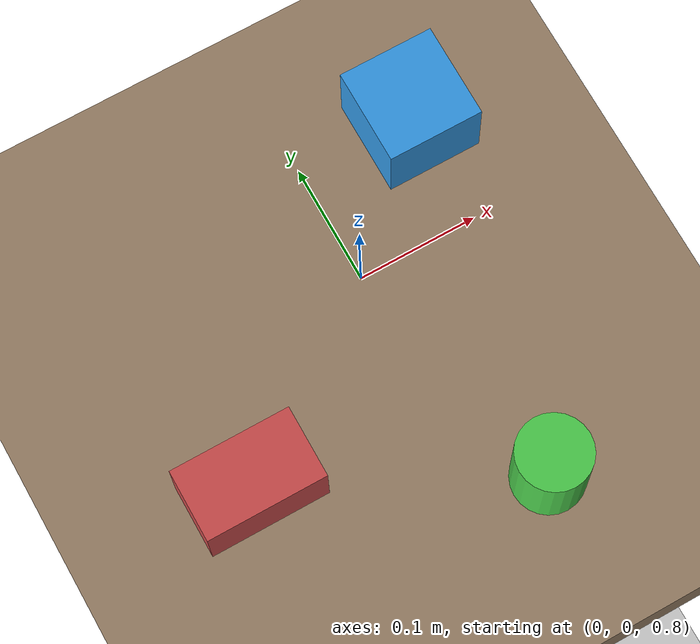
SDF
<?xml version="1.0" ?>
<!-- URL: /home/laboratorio/TFM/agarre_ros2_ws/src/agarre_gazebo/worlds/mesa_agarre_rgbd.sdf -->
<!-- Summary: Gazebo world for table grasping with RGB-D camera. -->
<sdf version="1.7">
  <world name="mesa_agarre_rgbd">

    <gravity>0 0 -9.81</gravity>

    <include>
      <uri>model://sun</uri>
    </include>

    <include>
      <uri>model://ground_plane</uri>
    </include>

    <!-- Mesa -->
    <model name="mesa">
      <static>true</static>
      <pose>0 0 0.75 0 0 0</pose>
      <link name="mesa_link">
        <collision name="mesa_collision">
          <geometry>
            <box>
              <size>1.2 0.8 0.05</size>
            </box>
          </geometry>
        </collision>
        <visual name="mesa_visual">
          <geometry>
            <box>
              <size>1.2 0.8 0.05</size>
            </box>
          </geometry>
          <material>
            <diffuse>0.6 0.5 0.4 1</diffuse>
          </material>
        </visual>
      </link>
    </model>

    <!-- Objetos sobre la mesa -->
    <model name="obj_box_1">
      <static>false</static>
      <pose>0.10 0.10 0.80 0 0 0</pose>
      <link name="link">
        <inertial><mass>0.2</mass></inertial>
        <collision name="collision">
          <geometry>
            <box><size>0.08 0.08 0.08</size></box>
          </geometry>
        </collision>
        <visual name="visual">
          <geometry>
            <box><size>0.08 0.08 0.08</size></box>
          </geometry>
          <material>
            <diffuse>0.2 0.6 0.9 1</diffuse>
          </material>
        </visual>
      </link>
    </model>

    <model name="obj_box_2">
      <static>false</static>
      <pose>-0.15 -0.10 0.80 0 0 0</pose>
      <link name="link">
        <inertial><mass>0.2</mass></inertial>
        <collision name="collision">
          <geometry>
            <box><size>0.10 0.06 0.06</size></box>
          </geometry>
        </collision>
        <visual name="visual">
          <geometry>
            <box><size>0.10 0.06 0.06</size></box>
          </geometry>
          <material>
            <diffuse>0.8 0.3 0.3 1</diffuse>
          </material>
        </visual>
      </link>
    </model>

    <model name="obj_cyl_1">
      <static>false</static>
      <pose>0.05 -0.20 0.80 0 0 0</pose>
      <link name="link">
        <inertial><mass>0.15</mass></inertial>
        <collision name="collision">
          <geometry>
            <cylinder><radius>0.03</radius><length>0.10</length></cylinder>
          </geometry>
        </collision>
        <visual name="visual">
          <geometry>
            <cylinder><radius>0.03</radius><length>0.10</length></cylinder>
          </geometry>
          <material>
            <diffuse>0.3 0.8 0.3 1</diffuse>
          </material>
        </visual>
      </link>
    </model>

  </world>
</sdf>
